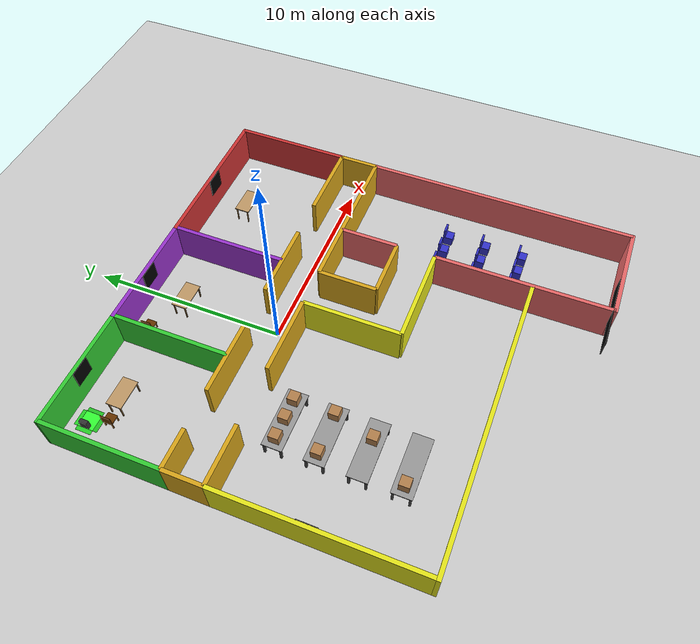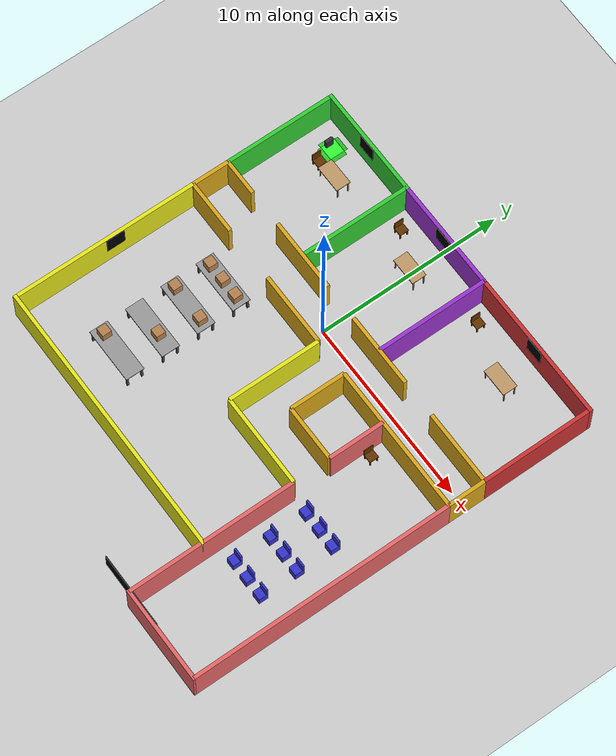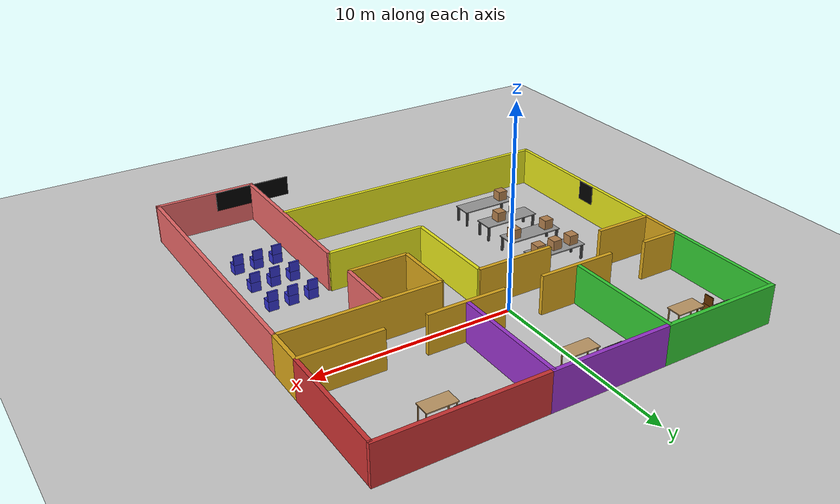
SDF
<?xml version='1.0' encoding='utf-8'?>
<sdf version='1.9'>
  <world name='hospital_carrion_world'>
    <!-- PLUGINS BASE DE FÍSICAS -->
    <physics name='1ms' type='ignored'>
      <max_step_size>0.001</max_step_size>
      <real_time_factor>1</real_time_factor>
      <real_time_update_rate>1000</real_time_update_rate>
    </physics>
    <plugin name='gz::sim::systems::Physics' filename='ignition-gazebo-physics-system'/>
    <plugin name='gz::sim::systems::UserCommands' filename='ignition-gazebo-user-commands-system'/>
    <plugin name='gz::sim::systems::SceneBroadcaster' filename='ignition-gazebo-scene-broadcaster-system'/>
    <plugin name='gz::sim::systems::Contact' filename='ignition-gazebo-contact-system'/>
    <gravity>0 0 -9.8</gravity>

    <scene>
      <ambient>0.5 0.5 0.5 1</ambient>
      <background>0.7 0.7 0.7 1</background>
      <shadows>true</shadows>
    </scene>

    <!-- LUZ -->
    <light name='sun' type='directional'>
      <pose>0 0 10 0 0 0</pose>
      <cast_shadows>true</cast_shadows>
      <direction>-0.5 0.1 -0.9</direction>
      <diffuse>0.8 0.8 0.8 1</diffuse>
      <specular>0.2 0.2 0.2 1</specular>
    </light>

    <!-- SUELO -->
    <model name='ground_plane'>
      <static>true</static>
      <link name='link'>
        <collision name='collision'><geometry><plane><normal>0 0 1</normal><size>100 100</size></plane></geometry></collision>
        <visual name='visual'>
          <geometry><plane><normal>0 0 1</normal><size>100 100</size></plane></geometry>
          <material><ambient>0.8 0.8 0.8 1</ambient><diffuse>0.8 0.8 0.8 1</diffuse></material>
        </visual>
      </link>
    </model>

    <!-- ESTRUCTURA DEL EDIFICIO (Paredes)          -->
    <model name='building_structure'>
      <static>true</static>
      <link name='walls'>
        <!-- Pasillo Principal Horizontal (Color Mostaza) -->
        <visual name='cw_l'><pose>-9 0 1 0 0 1.5708</pose><geometry><box><size>2 0.2 2</size></box></geometry><material><ambient>0.85 0.65 0.1 1</ambient><diffuse>0.85 0.65 0.1 1</diffuse></material></visual>
        <collision name='ccw_l'><pose>-9 0 1 0 0 1.5708</pose><geometry><box><size>2 0.2 2</size></box></geometry></collision>
        <visual name='cw_r'><pose>11 0 1 0 0 1.5708</pose><geometry><box><size>2 0.2 2</size></box></geometry><material><ambient>0.85 0.65 0.1 1</ambient><diffuse>0.85 0.65 0.1 1</diffuse></material></visual>
        <collision name='ccw_r'><pose>11 0 1 0 0 1.5708</pose><geometry><box><size>2 0.2 2</size></box></geometry></collision>

        <visual name='cw_t1'><pose>-8 1 1 0 0 0</pose><geometry><box><size>2 0.2 2</size></box></geometry><material><ambient>0.85 0.65 0.1 1</ambient><diffuse>0.85 0.65 0.1 1</diffuse></material></visual>
        <visual name='cw_t2'><pose>-3 1 1 0 0 0</pose><geometry><box><size>4 0.2 2</size></box></geometry><material><ambient>0.85 0.65 0.1 1</ambient><diffuse>0.85 0.65 0.1 1</diffuse></material></visual>
        <visual name='cw_t3'><pose>3 1 1 0 0 0</pose><geometry><box><size>4 0.2 2</size></box></geometry><material><ambient>0.85 0.65 0.1 1</ambient><diffuse>0.85 0.65 0.1 1</diffuse></material></visual>
        <visual name='cw_t4'><pose>9 1 1 0 0 0</pose><geometry><box><size>4 0.2 2</size></box></geometry><material><ambient>0.85 0.65 0.1 1</ambient><diffuse>0.85 0.65 0.1 1</diffuse></material></visual>
        <collision name='ccw_t1'><pose>-8 1 1 0 0 0</pose><geometry><box><size>2 0.2 2</size></box></geometry></collision>
        <collision name='ccw_t2'><pose>-3 1 1 0 0 0</pose><geometry><box><size>4 0.2 2</size></box></geometry></collision>
        <collision name='ccw_t3'><pose>3 1 1 0 0 0</pose><geometry><box><size>4 0.2 2</size></box></geometry></collision>
        <collision name='ccw_t4'><pose>9 1 1 0 0 0</pose><geometry><box><size>4 0.2 2</size></box></geometry></collision>

        <visual name='cw_b1'><pose>-7.5 -1 1 0 0 0</pose><geometry><box><size>3 0.2 2</size></box></geometry><material><ambient>0.85 0.65 0.1 1</ambient><diffuse>0.85 0.65 0.1 1</diffuse></material></visual>
        <visual name='cw_b2'><pose>-1 -1 1 0 0 0</pose><geometry><box><size>4 0.2 2</size></box></geometry><material><ambient>0.85 0.65 0.1 1</ambient><diffuse>0.85 0.65 0.1 1</diffuse></material></visual>
        <visual name='cw_b3'><pose>7 -1 1 0 0 0</pose><geometry><box><size>8 0.2 2</size></box></geometry><material><ambient>0.85 0.65 0.1 1</ambient><diffuse>0.85 0.65 0.1 1</diffuse></material></visual>
        <collision name='ccw_b1'><pose>-7.5 -1 1 0 0 0</pose><geometry><box><size>3 0.2 2</size></box></geometry></collision>
        <collision name='ccw_b2'><pose>-1 -1 1 0 0 0</pose><geometry><box><size>4 0.2 2</size></box></geometry></collision>
        <collision name='ccw_b3'><pose>7 -1 1 0 0 0</pose><geometry><box><size>8 0.2 2</size></box></geometry></collision>

        <!-- ================== CUARTOS SUPERIORES ================== -->
        <!-- R1: Verde -->
        <visual name='r1_l'><pose>-9 4 1 0 0 1.5708</pose><geometry><box><size>6 0.2 2</size></box></geometry><material><ambient>0.2 0.8 0.2 1</ambient><diffuse>0.2 0.8 0.2 1</diffuse></material></visual>
        <visual name='r1_r'><pose>-3 4 1 0 0 1.5708</pose><geometry><box><size>6 0.2 2</size></box></geometry><material><ambient>0.2 0.8 0.2 1</ambient><diffuse>0.2 0.8 0.2 1</diffuse></material></visual>
        <visual name='r1_t'><pose>-6 7 1 0 0 0</pose><geometry><box><size>6.2 0.2 2</size></box></geometry><material><ambient>0.2 0.8 0.2 1</ambient><diffuse>0.2 0.8 0.2 1</diffuse></material></visual>
        <collision name='cr1_l'><pose>-9 4 1 0 0 1.5708</pose><geometry><box><size>6 0.2 2</size></box></geometry></collision>
        <collision name='cr1_r'><pose>-3 4 1 0 0 1.5708</pose><geometry><box><size>6 0.2 2</size></box></geometry></collision>
        <collision name='cr1_t'><pose>-6 7 1 0 0 0</pose><geometry><box><size>6.2 0.2 2</size></box></geometry></collision>

        <!-- R2: Morado -->
        <visual name='r2_r'><pose>3 4 1 0 0 1.5708</pose><geometry><box><size>6 0.2 2</size></box></geometry><material><ambient>0.6 0.2 0.8 1</ambient><diffuse>0.6 0.2 0.8 1</diffuse></material></visual>
        <visual name='r2_t'><pose>0 7 1 0 0 0</pose><geometry><box><size>6.2 0.2 2</size></box></geometry><material><ambient>0.6 0.2 0.8 1</ambient><diffuse>0.6 0.2 0.8 1</diffuse></material></visual>
        <collision name='cr2_r'><pose>3 4 1 0 0 1.5708</pose><geometry><box><size>6 0.2 2</size></box></geometry></collision>
        <collision name='cr2_t'><pose>0 7 1 0 0 0</pose><geometry><box><size>6.2 0.2 2</size></box></geometry></collision>

        <!-- R3: Rojo -->
        <visual name='r3_r'><pose>11 4 1 0 0 1.5708</pose><geometry><box><size>6 0.2 2</size></box></geometry><material><ambient>0.8 0.2 0.2 1</ambient><diffuse>0.8 0.2 0.2 1</diffuse></material></visual>
        <visual name='r3_t'><pose>7 7 1 0 0 0</pose><geometry><box><size>8.2 0.2 2</size></box></geometry><material><ambient>0.8 0.2 0.2 1</ambient><diffuse>0.8 0.2 0.2 1</diffuse></material></visual>
        <collision name='cr3_r'><pose>11 4 1 0 0 1.5708</pose><geometry><box><size>6 0.2 2</size></box></geometry></collision>
        <collision name='cr3_t'><pose>7 7 1 0 0 0</pose><geometry><box><size>8.2 0.2 2</size></box></geometry></collision>

        <!-- ================== PASILLO EN FORMA DE "L" ================== -->
        <visual name='lc_r'><pose>3 -2.5 1 0 0 1.5708</pose><geometry><box><size>3 0.2 2</size></box></geometry><material><ambient>0.85 0.65 0.1 1</ambient><diffuse>0.85 0.65 0.1 1</diffuse></material></visual>
        <collision name='clc_r'><pose>3 -2.5 1 0 0 1.5708</pose><geometry><box><size>3 0.2 2</size></box></geometry></collision>
        <visual name='lc_t'><pose>4.5 -4 1 0 0 0</pose><geometry><box><size>3 0.2 2</size></box></geometry><material><ambient>0.85 0.65 0.1 1</ambient><diffuse>0.85 0.65 0.1 1</diffuse></material></visual>
        <collision name='clc_t'><pose>4.5 -4 1 0 0 0</pose><geometry><box><size>3 0.2 2</size></box></geometry></collision>

        <!-- ================== ALMACÉN Y SALA DE ESPERA ================== -->
        <!-- R4: Almacén Amarillo -->
        <visual name='r4_l'><pose>-9 -6 1 0 0 1.5708</pose><geometry><box><size>10 0.2 2</size></box></geometry><material><ambient>0.9 0.9 0.1 1</ambient><diffuse>0.9 0.9 0.1 1</diffuse></material></visual>
        <visual name='r4_b'><pose>-1.5 -11 1 0 0 0</pose><geometry><box><size>15.2 0.2 2</size></box></geometry><material><ambient>0.9 0.9 0.1 1</ambient><diffuse>0.9 0.9 0.1 1</diffuse></material></visual>
        <visual name='r4_ru'><pose>1 -3.5 1 0 0 1.5708</pose><geometry><box><size>5 0.2 2</size></box></geometry><material><ambient>0.9 0.9 0.1 1</ambient><diffuse>0.9 0.9 0.1 1</diffuse></material></visual>
        <visual name='r4_tlow'><pose>3.5 -6 1 0 0 0</pose><geometry><box><size>5 0.2 2</size></box></geometry><material><ambient>0.9 0.9 0.1 1</ambient><diffuse>0.9 0.9 0.1 1</diffuse></material></visual>
        <collision name='cr4_l'><pose>-9 -6 1 0 0 1.5708</pose><geometry><box><size>10 0.2 2</size></box></geometry></collision>
        <collision name='cr4_b'><pose>-1.5 -11 1 0 0 0</pose><geometry><box><size>15.2 0.2 2</size></box></geometry></collision>
        <collision name='cr4_ru'><pose>1 -3.5 1 0 0 1.5708</pose><geometry><box><size>5 0.2 2</size></box></geometry></collision>
        <collision name='cr4_tlow'><pose>3.5 -6 1 0 0 0</pose><geometry><box><size>5 0.2 2</size></box></geometry></collision>

        <!-- R5: Sala de Espera ROJA CLARA -->
        <visual name='r5_lu'><pose>6 -2.5 1 0 0 1.5708</pose><geometry><box><size>3 0.2 2</size></box></geometry><material><ambient>0.9 0.4 0.4 1</ambient><diffuse>0.9 0.4 0.4 1</diffuse></material></visual>
        <collision name='cr5_lu'><pose>6 -2.5 1 0 0 1.5708</pose><geometry><box><size>3 0.2 2</size></box></geometry></collision>

        <visual name='r5_ll'><pose>6 -10.5 1 0 0 1.5708</pose><geometry><box><size>9 0.2 2</size></box></geometry><material><ambient>0.9 0.4 0.4 1</ambient><diffuse>0.9 0.4 0.4 1</diffuse></material></visual>
        <collision name='cr5_ll'><pose>6 -10.5 1 0 0 1.5708</pose><geometry><box><size>9 0.2 2</size></box></geometry></collision>

        <visual name='r5_r'><pose>11 -8 1 0 0 1.5708</pose><geometry><box><size>14 0.2 2</size></box></geometry><material><ambient>0.9 0.4 0.4 1</ambient><diffuse>0.9 0.4 0.4 1</diffuse></material></visual>
        <collision name='cr5_r'><pose>11 -8 1 0 0 1.5708</pose><geometry><box><size>14 0.2 2</size></box></geometry></collision>

        <visual name='r5_b'><pose>8.5 -15 1 0 0 0</pose><geometry><box><size>5.2 0.2 2</size></box></geometry><material><ambient>0.9 0.4 0.4 1</ambient><diffuse>0.9 0.4 0.4 1</diffuse></material></visual>
        <collision name='cr5_b'><pose>8.5 -15 1 0 0 0</pose><geometry><box><size>5.2 0.2 2</size></box></geometry></collision>
      </link>
    </model>

    <!-- TABLEROS MARCADORES SIN TEXTO (Evita Error)-->
    <model name='wall_boards'>
      <static>true</static>
      <link name='boards_link'>
        <!-- Tablero Cuarto Verde -->
        <visual name='board1'><pose>-6 6.89 1.5 1.5708 0 3.14159</pose><geometry><box><size>1.0 1.0 0.05</size></box></geometry><material><ambient>0 0 0 1</ambient><diffuse>0 0 0 1</diffuse></material></visual>

        <!-- Tablero Cuarto Morado -->
        <visual name='board2'><pose>0 6.89 1.5 1.5708 0 3.14159</pose><geometry><box><size>1.0 1.0 0.05</size></box></geometry><material><ambient>0 0 0 1</ambient><diffuse>0 0 0 1</diffuse></material></visual>

        <!-- Tablero Cuarto Rojo -->
        <visual name='board3'><pose>7 6.89 1.5 1.5708 0 3.14159</pose><geometry><box><size>1.0 1.0 0.05</size></box></geometry><material><ambient>0 0 0 1</ambient><diffuse>0 0 0 1</diffuse></material></visual>

        <!-- Tablero Almacén -->
        <visual name='board4'><pose>-8.89 -5.5 1.5 1.5708 0 -1.5708</pose><geometry><box><size>1.0 1.0 0.05</size></box></geometry><material><ambient>0 0 0 1</ambient><diffuse>0 0 0 1</diffuse></material></visual>

        <!-- Tablero Sala de Espera -->
        <visual name='board_sala'><pose>6.0 -14.89 1.5 1.5708 0 0</pose><geometry><box><size>4.0 1.0 0.05</size></box></geometry><material><ambient>0 0 0 1</ambient><diffuse>0 0 0 1</diffuse></material></visual>
      </link>
    </model>

    <!-- ESTACIÓN DE CARGA (Cuarto Verde)           -->
    <model name='charging_station'>
      <static>true</static>
      <pose>-7.5 6.0 0 0 0 0</pose>
      <link name='charger_link'>
        <visual name='pad_vis'><pose>0 0 0.02 0 0 0</pose><geometry><box><size>0.8 0.8 0.04</size></box></geometry><material><ambient>0.2 1.0 0.2 1</ambient><diffuse>0.2 1.0 0.2 1</diffuse></material></visual>
        <collision name='pad_col'><pose>0 0 0.02 0 0 0</pose><geometry><box><size>0.8 0.8 0.04</size></box></geometry></collision>

        <visual name='tower_vis'><pose>-0.3 0 0.25 0 0 0</pose><geometry><box><size>0.2 0.4 0.5</size></box></geometry><material><ambient>0.2 0.2 0.2 1</ambient><diffuse>0.2 0.2 0.2 1</diffuse></material></visual>
        <collision name='tower_col'><pose>-0.3 0 0.25 0 0 0</pose><geometry><box><size>0.2 0.4 0.5</size></box></geometry></collision>

        <visual name='ramp_f_vis'><pose>0.5 0 0.02 0 0.197 0</pose><geometry><box><size>0.204 0.8 0.01</size></box></geometry><material><ambient>0.15 0.8 0.15 1</ambient><diffuse>0.15 0.8 0.15 1</diffuse></material></visual>
        <collision name='ramp_f_col'><pose>0.5 0 0.02 0 0.197 0</pose><geometry><box><size>0.204 0.8 0.01</size></box></geometry></collision>

        <visual name='ramp_b_vis'><pose>-0.5 0 0.02 0 -0.197 0</pose><geometry><box><size>0.204 0.8 0.01</size></box></geometry><material><ambient>0.15 0.8 0.15 1</ambient><diffuse>0.15 0.8 0.15 1</diffuse></material></visual>
        <collision name='ramp_b_col'><pose>-0.5 0 0.02 0 -0.197 0</pose><geometry><box><size>0.204 0.8 0.01</size></box></geometry></collision>

        <visual name='ramp_l_vis'><pose>0 0.5 0.02 -0.197 0 0</pose><geometry><box><size>0.8 0.204 0.01</size></box></geometry><material><ambient>0.15 0.8 0.15 1</ambient><diffuse>0.15 0.8 0.15 1</diffuse></material></visual>
        <collision name='ramp_l_col'><pose>0 0.5 0.02 -0.197 0 0</pose><geometry><box><size>0.8 0.204 0.01</size></box></geometry></collision>

        <visual name='ramp_r_vis'><pose>0 -0.5 0.02 0.197 0 0</pose><geometry><box><size>0.8 0.204 0.01</size></box></geometry><material><ambient>0.15 0.8 0.15 1</ambient><diffuse>0.15 0.8 0.15 1</diffuse></material></visual>
        <collision name='ramp_r_col'><pose>0 -0.5 0.02 0.197 0 0</pose><geometry><box><size>0.8 0.204 0.01</size></box></geometry></collision>
      </link>
    </model>

    <!-- MESAS ESTÁNDAR DE 4 PATAS (Marrón Claro)   -->
    <model name='standard_4_leg_tables'>
      <static>true</static>
      <link name='tables_link'>
        <visual name='t1_top'><pose>-6 5 0.8 0 0 0</pose><geometry><box><size>1.5 0.8 0.05</size></box></geometry><material><ambient>0.75 0.6 0.4 1</ambient><diffuse>0.75 0.6 0.4 1</diffuse></material></visual>
        <visual name='t1_l1'><pose>-5.3 5.3 0.4 0 0 0</pose><geometry><box><size>0.05 0.05 0.8</size></box></geometry><material><ambient>0.65 0.5 0.3 1</ambient><diffuse>0.65 0.5 0.3 1</diffuse></material></visual>
        <visual name='t1_l2'><pose>-6.7 5.3 0.4 0 0 0</pose><geometry><box><size>0.05 0.05 0.8</size></box></geometry><material><ambient>0.65 0.5 0.3 1</ambient><diffuse>0.65 0.5 0.3 1</diffuse></material></visual>
        <visual name='t1_l3'><pose>-5.3 4.7 0.4 0 0 0</pose><geometry><box><size>0.05 0.05 0.8</size></box></geometry><material><ambient>0.65 0.5 0.3 1</ambient><diffuse>0.65 0.5 0.3 1</diffuse></material></visual>
        <visual name='t1_l4'><pose>-6.7 4.7 0.4 0 0 0</pose><geometry><box><size>0.05 0.05 0.8</size></box></geometry><material><ambient>0.65 0.5 0.3 1</ambient><diffuse>0.65 0.5 0.3 1</diffuse></material></visual>
        <collision name='ct1'><pose>-6 5 0.8 0 0 0</pose><geometry><box><size>1.5 0.8 0.05</size></box></geometry></collision>

        <visual name='t2_top'><pose>0 5 0.8 0 0 0</pose><geometry><box><size>1.5 0.8 0.05</size></box></geometry><material><ambient>0.75 0.6 0.4 1</ambient><diffuse>0.75 0.6 0.4 1</diffuse></material></visual>
        <visual name='t2_l1'><pose>0.7 5.3 0.4 0 0 0</pose><geometry><box><size>0.05 0.05 0.8</size></box></geometry><material><ambient>0.65 0.5 0.3 1</ambient><diffuse>0.65 0.5 0.3 1</diffuse></material></visual>
        <visual name='t2_l2'><pose>-0.7 5.3 0.4 0 0 0</pose><geometry><box><size>0.05 0.05 0.8</size></box></geometry><material><ambient>0.65 0.5 0.3 1</ambient><diffuse>0.65 0.5 0.3 1</diffuse></material></visual>
        <visual name='t2_l3'><pose>0.7 4.7 0.4 0 0 0</pose><geometry><box><size>0.05 0.05 0.8</size></box></geometry><material><ambient>0.65 0.5 0.3 1</ambient><diffuse>0.65 0.5 0.3 1</diffuse></material></visual>
        <visual name='t2_l4'><pose>-0.7 4.7 0.4 0 0 0</pose><geometry><box><size>0.05 0.05 0.8</size></box></geometry><material><ambient>0.65 0.5 0.3 1</ambient><diffuse>0.65 0.5 0.3 1</diffuse></material></visual>
        <collision name='ct2'><pose>0 5 0.8 0 0 0</pose><geometry><box><size>1.5 0.8 0.05</size></box></geometry></collision>

        <visual name='t3_top'><pose>7 5 0.8 0 0 0</pose><geometry><box><size>1.5 0.8 0.05</size></box></geometry><material><ambient>0.75 0.6 0.4 1</ambient><diffuse>0.75 0.6 0.4 1</diffuse></material></visual>
        <visual name='t3_l1'><pose>7.7 5.3 0.4 0 0 0</pose><geometry><box><size>0.05 0.05 0.8</size></box></geometry><material><ambient>0.65 0.5 0.3 1</ambient><diffuse>0.65 0.5 0.3 1</diffuse></material></visual>
        <visual name='t3_l2'><pose>6.3 5.3 0.4 0 0 0</pose><geometry><box><size>0.05 0.05 0.8</size></box></geometry><material><ambient>0.65 0.5 0.3 1</ambient><diffuse>0.65 0.5 0.3 1</diffuse></material></visual>
        <visual name='t3_l3'><pose>7.7 4.7 0.4 0 0 0</pose><geometry><box><size>0.05 0.05 0.8</size></box></geometry><material><ambient>0.65 0.5 0.3 1</ambient><diffuse>0.65 0.5 0.3 1</diffuse></material></visual>
        <visual name='t3_l4'><pose>6.3 4.7 0.4 0 0 0</pose><geometry><box><size>0.05 0.05 0.8</size></box></geometry><material><ambient>0.65 0.5 0.3 1</ambient><diffuse>0.65 0.5 0.3 1</diffuse></material></visual>
        <collision name='ct3'><pose>7 5 0.8 0 0 0</pose><geometry><box><size>1.5 0.8 0.05</size></box></geometry></collision>
      </link>
    </model>

    <!-- SILLAS INDIVIDUALES DE 4 PATAS             -->
    <model name='chairs_4_legs'>
      <static>true</static>
      <link name='c4_link'>
        <visual name='bc1_seat'><pose>-7.2 5.0 0.4 0 0 0</pose><geometry><box><size>0.5 0.5 0.05</size></box></geometry><material><ambient>0.4 0.2 0 1</ambient><diffuse>0.4 0.2 0 1</diffuse></material></visual>
        <visual name='bc1_l1'><pose>-7.0 5.2 0.2 0 0 0</pose><geometry><box><size>0.05 0.05 0.4</size></box></geometry><material><ambient>0.4 0.2 0 1</ambient><diffuse>0.4 0.2 0 1</diffuse></material></visual>
        <visual name='bc1_l2'><pose>-7.4 5.2 0.2 0 0 0</pose><geometry><box><size>0.05 0.05 0.4</size></box></geometry><material><ambient>0.4 0.2 0 1</ambient><diffuse>0.4 0.2 0 1</diffuse></material></visual>
        <visual name='bc1_l3'><pose>-7.0 4.8 0.2 0 0 0</pose><geometry><box><size>0.05 0.05 0.4</size></box></geometry><material><ambient>0.4 0.2 0 1</ambient><diffuse>0.4 0.2 0 1</diffuse></material></visual>
        <visual name='bc1_l4'><pose>-7.4 4.8 0.2 0 0 0</pose><geometry><box><size>0.05 0.05 0.4</size></box></geometry><material><ambient>0.4 0.2 0 1</ambient><diffuse>0.4 0.2 0 1</diffuse></material></visual>
        <visual name='bc1_back'><pose>-7.425 5.0 0.65 0 0 0</pose><geometry><box><size>0.05 0.5 0.5</size></box></geometry><material><ambient>0.4 0.2 0 1</ambient><diffuse>0.4 0.2 0 1</diffuse></material></visual>
        <collision name='cbc1'><pose>-7.2 5.0 0.2 0 0 0</pose><geometry><box><size>0.5 0.5 0.4</size></box></geometry></collision>
        <collision name='cbc1_b'><pose>-7.425 5.0 0.65 0 0 0</pose><geometry><box><size>0.05 0.5 0.5</size></box></geometry></collision>

        <visual name='bc2_seat'><pose>-2.0 6.0 0.4 0 0 0</pose><geometry><box><size>0.5 0.5 0.05</size></box></geometry><material><ambient>0.4 0.2 0 1</ambient><diffuse>0.4 0.2 0 1</diffuse></material></visual>
        <visual name='bc2_l1'><pose>-1.8 6.2 0.2 0 0 0</pose><geometry><box><size>0.05 0.05 0.4</size></box></geometry><material><ambient>0.4 0.2 0 1</ambient><diffuse>0.4 0.2 0 1</diffuse></material></visual>
        <visual name='bc2_l2'><pose>-2.2 6.2 0.2 0 0 0</pose><geometry><box><size>0.05 0.05 0.4</size></box></geometry><material><ambient>0.4 0.2 0 1</ambient><diffuse>0.4 0.2 0 1</diffuse></material></visual>
        <visual name='bc2_l3'><pose>-1.8 5.8 0.2 0 0 0</pose><geometry><box><size>0.05 0.05 0.4</size></box></geometry><material><ambient>0.4 0.2 0 1</ambient><diffuse>0.4 0.2 0 1</diffuse></material></visual>
        <visual name='bc2_l4'><pose>-2.2 5.8 0.2 0 0 0</pose><geometry><box><size>0.05 0.05 0.4</size></box></geometry><material><ambient>0.4 0.2 0 1</ambient><diffuse>0.4 0.2 0 1</diffuse></material></visual>
        <visual name='bc2_back'><pose>-2.225 6.0 0.65 0 0 0</pose><geometry><box><size>0.05 0.5 0.5</size></box></geometry><material><ambient>0.4 0.2 0 1</ambient><diffuse>0.4 0.2 0 1</diffuse></material></visual>
        <collision name='cbc2'><pose>-2.0 6.0 0.2 0 0 0</pose><geometry><box><size>0.5 0.5 0.4</size></box></geometry></collision>
        <collision name='cbc2_b'><pose>-2.225 6.0 0.65 0 0 0</pose><geometry><box><size>0.05 0.5 0.5</size></box></geometry></collision>

        <visual name='bc3_seat'><pose>4.0 6.0 0.4 0 0 0</pose><geometry><box><size>0.5 0.5 0.05</size></box></geometry><material><ambient>0.4 0.2 0 1</ambient><diffuse>0.4 0.2 0 1</diffuse></material></visual>
        <visual name='bc3_l1'><pose>4.2 6.2 0.2 0 0 0</pose><geometry><box><size>0.05 0.05 0.4</size></box></geometry><material><ambient>0.4 0.2 0 1</ambient><diffuse>0.4 0.2 0 1</diffuse></material></visual>
        <visual name='bc3_l2'><pose>3.8 6.2 0.2 0 0 0</pose><geometry><box><size>0.05 0.05 0.4</size></box></geometry><material><ambient>0.4 0.2 0 1</ambient><diffuse>0.4 0.2 0 1</diffuse></material></visual>
        <visual name='bc3_l3'><pose>4.2 5.8 0.2 0 0 0</pose><geometry><box><size>0.05 0.05 0.4</size></box></geometry><material><ambient>0.4 0.2 0 1</ambient><diffuse>0.4 0.2 0 1</diffuse></material></visual>
        <visual name='bc3_l4'><pose>3.8 5.8 0.2 0 0 0</pose><geometry><box><size>0.05 0.05 0.4</size></box></geometry><material><ambient>0.4 0.2 0 1</ambient><diffuse>0.4 0.2 0 1</diffuse></material></visual>
        <visual name='bc3_back'><pose>3.775 6.0 0.65 0 0 0</pose><geometry><box><size>0.05 0.5 0.5</size></box></geometry><material><ambient>0.4 0.2 0 1</ambient><diffuse>0.4 0.2 0 1</diffuse></material></visual>
        <collision name='cbc3'><pose>4.0 6.0 0.2 0 0 0</pose><geometry><box><size>0.5 0.5 0.4</size></box></geometry></collision>
        <collision name='cbc3_b'><pose>3.775 6.0 0.65 0 0 0</pose><geometry><box><size>0.05 0.5 0.5</size></box></geometry></collision>

        <visual name='bc5_seat'><pose>6.5 -2.0 0.4 0 0 0</pose><geometry><box><size>0.5 0.5 0.05</size></box></geometry><material><ambient>0.4 0.2 0 1</ambient><diffuse>0.4 0.2 0 1</diffuse></material></visual>
        <visual name='bc5_l1'><pose>6.7 -1.8 0.2 0 0 0</pose><geometry><box><size>0.05 0.05 0.4</size></box></geometry><material><ambient>0.4 0.2 0 1</ambient><diffuse>0.4 0.2 0 1</diffuse></material></visual>
        <visual name='bc5_l2'><pose>6.3 -1.8 0.2 0 0 0</pose><geometry><box><size>0.05 0.05 0.4</size></box></geometry><material><ambient>0.4 0.2 0 1</ambient><diffuse>0.4 0.2 0 1</diffuse></material></visual>
        <visual name='bc5_l3'><pose>6.7 -2.2 0.2 0 0 0</pose><geometry><box><size>0.05 0.05 0.4</size></box></geometry><material><ambient>0.4 0.2 0 1</ambient><diffuse>0.4 0.2 0 1</diffuse></material></visual>
        <visual name='bc5_l4'><pose>6.3 -2.2 0.2 0 0 0</pose><geometry><box><size>0.05 0.05 0.4</size></box></geometry><material><ambient>0.4 0.2 0 1</ambient><diffuse>0.4 0.2 0 1</diffuse></material></visual>
        <visual name='bc5_back'><pose>6.275 -2.0 0.65 0 0 0</pose><geometry><box><size>0.05 0.5 0.5</size></box></geometry><material><ambient>0.4 0.2 0 1</ambient><diffuse>0.4 0.2 0 1</diffuse></material></visual>
        <collision name='cbc5'><pose>6.5 -2.0 0.2 0 0 0</pose><geometry><box><size>0.5 0.5 0.4</size></box></geometry></collision>
        <collision name='cbc5_b'><pose>6.275 -2.0 0.65 0 0 0</pose><geometry><box><size>0.05 0.5 0.5</size></box></geometry></collision>
      </link>
    </model>

    <!-- ALMACÉN EN R4 (4 Estantes de 0.8m Alto)    -->
    <model name='warehouse_items'>
      <static>true</static>
      <pose>-4.5 -6 0 0 0 0</pose>
      <link name='wh_link'>
        <visual name='s1_top'><pose>0 3.5 0.8 0 0 0</pose><geometry><box><size>3 1 0.05</size></box></geometry><material><ambient>0.6 0.6 0.6 1</ambient><diffuse>0.6 0.6 0.6 1</diffuse></material></visual>
        <visual name='s1_l1'><pose>1.4 3.9 0.4 0 0 0</pose><geometry><box><size>0.1 0.1 0.8</size></box></geometry><material><ambient>0.3 0.3 0.3 1</ambient><diffuse>0.3 0.3 0.3 1</diffuse></material></visual>
        <visual name='s1_l2'><pose>-1.4 3.9 0.4 0 0 0</pose><geometry><box><size>0.1 0.1 0.8</size></box></geometry><material><ambient>0.3 0.3 0.3 1</ambient><diffuse>0.3 0.3 0.3 1</diffuse></material></visual>
        <visual name='s1_l3'><pose>1.4 3.1 0.4 0 0 0</pose><geometry><box><size>0.1 0.1 0.8</size></box></geometry><material><ambient>0.3 0.3 0.3 1</ambient><diffuse>0.3 0.3 0.3 1</diffuse></material></visual>
        <visual name='s1_l4'><pose>-1.4 3.1 0.4 0 0 0</pose><geometry><box><size>0.1 0.1 0.8</size></box></geometry><material><ambient>0.3 0.3 0.3 1</ambient><diffuse>0.3 0.3 0.3 1</diffuse></material></visual>
        <collision name='cs1'><pose>0 3.5 0.8 0 0 0</pose><geometry><box><size>3 1 0.05</size></box></geometry></collision>
        <visual name='b1'><pose>1 3.5 1.075 0 0 0</pose><geometry><box><size>0.5 0.5 0.5</size></box></geometry><material><ambient>0.7 0.5 0.3 1</ambient><diffuse>0.7 0.5 0.3 1</diffuse></material></visual>
        <visual name='b2'><pose>0 3.5 1.075 0 0 0</pose><geometry><box><size>0.5 0.5 0.5</size></box></geometry><material><ambient>0.7 0.5 0.3 1</ambient><diffuse>0.7 0.5 0.3 1</diffuse></material></visual>
        <visual name='b3'><pose>-1 3.5 1.075 0 0 0</pose><geometry><box><size>0.5 0.5 0.5</size></box></geometry><material><ambient>0.7 0.5 0.3 1</ambient><diffuse>0.7 0.5 0.3 1</diffuse></material></visual>
        <collision name='cb1'><pose>1 3.5 1.075 0 0 0</pose><geometry><box><size>0.5 0.5 0.5</size></box></geometry></collision>
        <collision name='cb2'><pose>0 3.5 1.075 0 0 0</pose><geometry><box><size>0.5 0.5 0.5</size></box></geometry></collision>
        <collision name='cb3'><pose>-1 3.5 1.075 0 0 0</pose><geometry><box><size>0.5 0.5 0.5</size></box></geometry></collision>

        <visual name='s2_top'><pose>0 1.5 0.8 0 0 0</pose><geometry><box><size>3 1 0.05</size></box></geometry><material><ambient>0.6 0.6 0.6 1</ambient><diffuse>0.6 0.6 0.6 1</diffuse></material></visual>
        <visual name='s2_l1'><pose>1.4 1.9 0.4 0 0 0</pose><geometry><box><size>0.1 0.1 0.8</size></box></geometry><material><ambient>0.3 0.3 0.3 1</ambient><diffuse>0.3 0.3 0.3 1</diffuse></material></visual>
        <visual name='s2_l2'><pose>-1.4 1.9 0.4 0 0 0</pose><geometry><box><size>0.1 0.1 0.8</size></box></geometry><material><ambient>0.3 0.3 0.3 1</ambient><diffuse>0.3 0.3 0.3 1</diffuse></material></visual>
        <visual name='s2_l3'><pose>1.4 1.1 0.4 0 0 0</pose><geometry><box><size>0.1 0.1 0.8</size></box></geometry><material><ambient>0.3 0.3 0.3 1</ambient><diffuse>0.3 0.3 0.3 1</diffuse></material></visual>
        <visual name='s2_l4'><pose>-1.4 1.1 0.4 0 0 0</pose><geometry><box><size>0.1 0.1 0.8</size></box></geometry><material><ambient>0.3 0.3 0.3 1</ambient><diffuse>0.3 0.3 0.3 1</diffuse></material></visual>
        <collision name='cs2'><pose>0 1.5 0.8 0 0 0</pose><geometry><box><size>3 1 0.05</size></box></geometry></collision>
        <visual name='b4'><pose>1 1.5 1.075 0 0 0</pose><geometry><box><size>0.5 0.5 0.5</size></box></geometry><material><ambient>0.7 0.5 0.3 1</ambient><diffuse>0.7 0.5 0.3 1</diffuse></material></visual>
        <visual name='b5'><pose>-1 1.5 1.075 0 0 0</pose><geometry><box><size>0.5 0.5 0.5</size></box></geometry><material><ambient>0.7 0.5 0.3 1</ambient><diffuse>0.7 0.5 0.3 1</diffuse></material></visual>
        <collision name='cb4'><pose>1 1.5 1.075 0 0 0</pose><geometry><box><size>0.5 0.5 0.5</size></box></geometry></collision>
        <collision name='cb5'><pose>-1 1.5 1.075 0 0 0</pose><geometry><box><size>0.5 0.5 0.5</size></box></geometry></collision>

        <visual name='s3_top'><pose>0 -0.5 0.8 0 0 0</pose><geometry><box><size>3 1 0.05</size></box></geometry><material><ambient>0.6 0.6 0.6 1</ambient><diffuse>0.6 0.6 0.6 1</diffuse></material></visual>
        <visual name='s3_l1'><pose>1.4 -0.1 0.4 0 0 0</pose><geometry><box><size>0.1 0.1 0.8</size></box></geometry><material><ambient>0.3 0.3 0.3 1</ambient><diffuse>0.3 0.3 0.3 1</diffuse></material></visual>
        <visual name='s3_l2'><pose>-1.4 -0.1 0.4 0 0 0</pose><geometry><box><size>0.1 0.1 0.8</size></box></geometry><material><ambient>0.3 0.3 0.3 1</ambient><diffuse>0.3 0.3 0.3 1</diffuse></material></visual>
        <visual name='s3_l3'><pose>1.4 -0.9 0.4 0 0 0</pose><geometry><box><size>0.1 0.1 0.8</size></box></geometry><material><ambient>0.3 0.3 0.3 1</ambient><diffuse>0.3 0.3 0.3 1</diffuse></material></visual>
        <visual name='s3_l4'><pose>-1.4 -0.9 0.4 0 0 0</pose><geometry><box><size>0.1 0.1 0.8</size></box></geometry><material><ambient>0.3 0.3 0.3 1</ambient><diffuse>0.3 0.3 0.3 1</diffuse></material></visual>
        <collision name='cs3'><pose>0 -0.5 0.8 0 0 0</pose><geometry><box><size>3 1 0.05</size></box></geometry></collision>
        <visual name='b7'><pose>0.5 -0.5 1.075 0 0 0</pose><geometry><box><size>0.5 0.5 0.5</size></box></geometry><material><ambient>0.7 0.5 0.3 1</ambient><diffuse>0.7 0.5 0.3 1</diffuse></material></visual>
        <collision name='cb7'><pose>0.5 -0.5 1.075 0 0 0</pose><geometry><box><size>0.5 0.5 0.5</size></box></geometry></collision>

        <visual name='s4_top'><pose>0 -2.5 0.8 0 0 0</pose><geometry><box><size>3 1 0.05</size></box></geometry><material><ambient>0.6 0.6 0.6 1</ambient><diffuse>0.6 0.6 0.6 1</diffuse></material></visual>
        <visual name='s4_l1'><pose>1.4 -2.1 0.4 0 0 0</pose><geometry><box><size>0.1 0.1 0.8</size></box></geometry><material><ambient>0.3 0.3 0.3 1</ambient><diffuse>0.3 0.3 0.3 1</diffuse></material></visual>
        <visual name='s4_l2'><pose>-1.4 -2.1 0.4 0 0 0</pose><geometry><box><size>0.1 0.1 0.8</size></box></geometry><material><ambient>0.3 0.3 0.3 1</ambient><diffuse>0.3 0.3 0.3 1</diffuse></material></visual>
        <visual name='s4_l3'><pose>1.4 -2.9 0.4 0 0 0</pose><geometry><box><size>0.1 0.1 0.8</size></box></geometry><material><ambient>0.3 0.3 0.3 1</ambient><diffuse>0.3 0.3 0.3 1</diffuse></material></visual>
        <visual name='s4_l4'><pose>-1.4 -2.9 0.4 0 0 0</pose><geometry><box><size>0.1 0.1 0.8</size></box></geometry><material><ambient>0.3 0.3 0.3 1</ambient><diffuse>0.3 0.3 0.3 1</diffuse></material></visual>
        <collision name='cs4'><pose>0 -2.5 0.8 0 0 0</pose><geometry><box><size>3 1 0.05</size></box></geometry></collision>
        <visual name='b8'><pose>-1 -2.5 1.075 0 0 0</pose><geometry><box><size>0.5 0.5 0.5</size></box></geometry><material><ambient>0.7 0.5 0.3 1</ambient><diffuse>0.7 0.5 0.3 1</diffuse></material></visual>
        <collision name='cb8'><pose>-1 -2.5 1.075 0 0 0</pose><geometry><box><size>0.5 0.5 0.5</size></box></geometry></collision>
      </link>
    </model>

    <!-- 3 FILAS DE SILLAS EN SALA DE ESPERA        -->
    <model name='waiting_chairs_rows'>
      <static>true</static>
      <pose>8.5 0 0 0 0 0</pose>
      <link name='link'>
        <visual name='r3_1s'><pose>-1.5 -6 0.25 0 0 0</pose><geometry><box><size>0.5 0.5 0.5</size></box></geometry><material><ambient>0.2 0.2 0.8 1</ambient><diffuse>0.2 0.2 0.8 1</diffuse></material></visual>
        <visual name='r3_1b'><pose>-1.5 -5.8 0.75 0 0 0</pose><geometry><box><size>0.5 0.1 0.5</size></box></geometry><material><ambient>0.2 0.2 0.8 1</ambient><diffuse>0.2 0.2 0.8 1</diffuse></material></visual>
        <visual name='r3_2s'><pose>-0.5 -6 0.25 0 0 0</pose><geometry><box><size>0.5 0.5 0.5</size></box></geometry><material><ambient>0.2 0.2 0.8 1</ambient><diffuse>0.2 0.2 0.8 1</diffuse></material></visual>
        <visual name='r3_2b'><pose>-0.5 -5.8 0.75 0 0 0</pose><geometry><box><size>0.5 0.1 0.5</size></box></geometry><material><ambient>0.2 0.2 0.8 1</ambient><diffuse>0.2 0.2 0.8 1</diffuse></material></visual>
        <visual name='r3_3s'><pose>0.5 -6 0.25 0 0 0</pose><geometry><box><size>0.5 0.5 0.5</size></box></geometry><material><ambient>0.2 0.2 0.8 1</ambient><diffuse>0.2 0.2 0.8 1</diffuse></material></visual>
        <visual name='r3_3b'><pose>0.5 -5.8 0.75 0 0 0</pose><geometry><box><size>0.5 0.1 0.5</size></box></geometry><material><ambient>0.2 0.2 0.8 1</ambient><diffuse>0.2 0.2 0.8 1</diffuse></material></visual>
        <collision name='cr3'><pose>-0.5 -6 0.25 0 0 0</pose><geometry><box><size>2.5 0.5 0.5</size></box></geometry></collision>

        <visual name='r4_1s'><pose>-1.5 -8 0.25 0 0 0</pose><geometry><box><size>0.5 0.5 0.5</size></box></geometry><material><ambient>0.2 0.2 0.8 1</ambient><diffuse>0.2 0.2 0.8 1</diffuse></material></visual>
        <visual name='r4_1b'><pose>-1.5 -7.8 0.75 0 0 0</pose><geometry><box><size>0.5 0.1 0.5</size></box></geometry><material><ambient>0.2 0.2 0.8 1</ambient><diffuse>0.2 0.2 0.8 1</diffuse></material></visual>
        <visual name='r4_2s'><pose>-0.5 -8 0.25 0 0 0</pose><geometry><box><size>0.5 0.5 0.5</size></box></geometry><material><ambient>0.2 0.2 0.8 1</ambient><diffuse>0.2 0.2 0.8 1</diffuse></material></visual>
        <visual name='r4_2b'><pose>-0.5 -7.8 0.75 0 0 0</pose><geometry><box><size>0.5 0.1 0.5</size></box></geometry><material><ambient>0.2 0.2 0.8 1</ambient><diffuse>0.2 0.2 0.8 1</diffuse></material></visual>
        <visual name='r4_3s'><pose>0.5 -8 0.25 0 0 0</pose><geometry><box><size>0.5 0.5 0.5</size></box></geometry><material><ambient>0.2 0.2 0.8 1</ambient><diffuse>0.2 0.2 0.8 1</diffuse></material></visual>
        <visual name='r4_3b'><pose>0.5 -7.8 0.75 0 0 0</pose><geometry><box><size>0.5 0.1 0.5</size></box></geometry><material><ambient>0.2 0.2 0.8 1</ambient><diffuse>0.2 0.2 0.8 1</diffuse></material></visual>
        <collision name='cr4'><pose>-0.5 -8 0.25 0 0 0</pose><geometry><box><size>2.5 0.5 0.5</size></box></geometry></collision>

        <visual name='r5_1s'><pose>-1.5 -10 0.25 0 0 0</pose><geometry><box><size>0.5 0.5 0.5</size></box></geometry><material><ambient>0.2 0.2 0.8 1</ambient><diffuse>0.2 0.2 0.8 1</diffuse></material></visual>
        <visual name='r5_1b'><pose>-1.5 -9.8 0.75 0 0 0</pose><geometry><box><size>0.5 0.1 0.5</size></box></geometry><material><ambient>0.2 0.2 0.8 1</ambient><diffuse>0.2 0.2 0.8 1</diffuse></material></visual>
        <visual name='r5_2s'><pose>-0.5 -10 0.25 0 0 0</pose><geometry><box><size>0.5 0.5 0.5</size></box></geometry><material><ambient>0.2 0.2 0.8 1</ambient><diffuse>0.2 0.2 0.8 1</diffuse></material></visual>
        <visual name='r5_2b'><pose>-0.5 -9.8 0.75 0 0 0</pose><geometry><box><size>0.5 0.1 0.5</size></box></geometry><material><ambient>0.2 0.2 0.8 1</ambient><diffuse>0.2 0.2 0.8 1</diffuse></material></visual>
        <visual name='r5_3s'><pose>0.5 -10 0.25 0 0 0</pose><geometry><box><size>0.5 0.5 0.5</size></box></geometry><material><ambient>0.2 0.2 0.8 1</ambient><diffuse>0.2 0.2 0.8 1</diffuse></material></visual>
        <visual name='r5_3b'><pose>0.5 -9.8 0.75 0 0 0</pose><geometry><box><size>0.5 0.1 0.5</size></box></geometry><material><ambient>0.2 0.2 0.8 1</ambient><diffuse>0.2 0.2 0.8 1</diffuse></material></visual>
        <collision name='cr5'><pose>-0.5 -10 0.25 0 0 0</pose><geometry><box><size>2.5 0.5 0.5</size></box></geometry></collision>
      </link>
    </model>

  </world>
</sdf>
